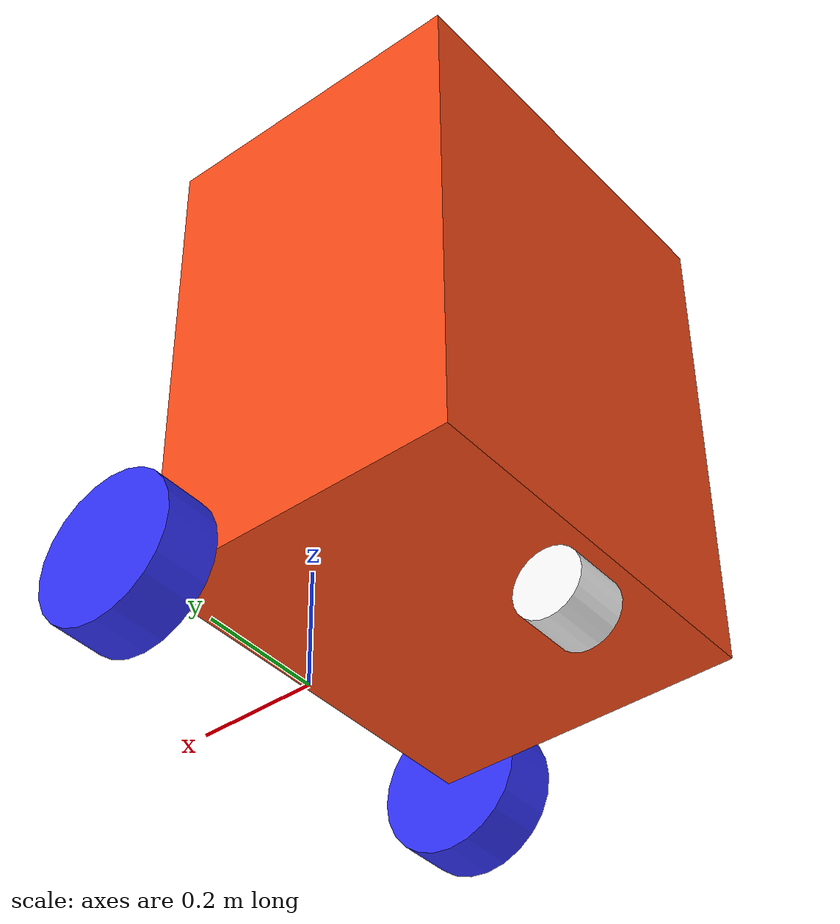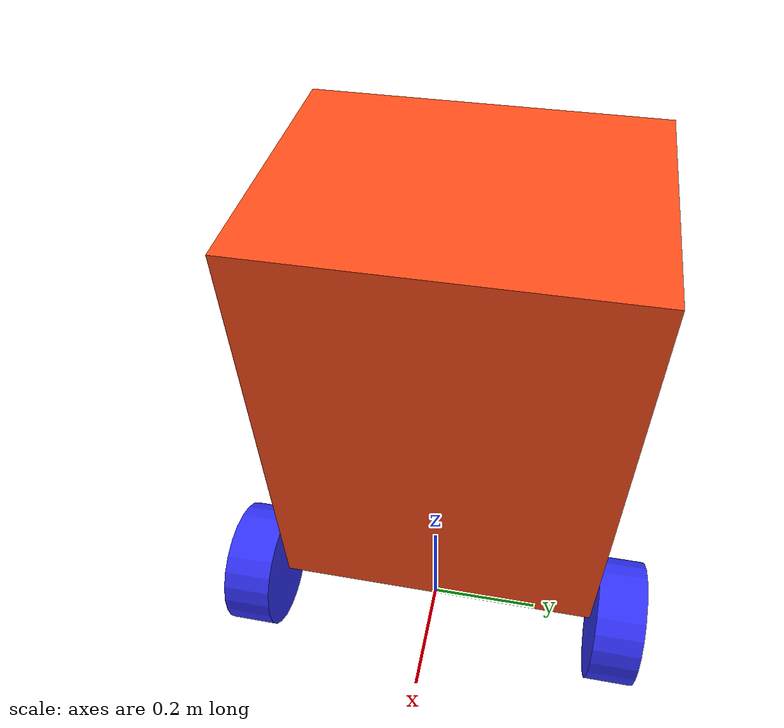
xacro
<?xml version="1.0"?>
<!--
  This file defines the core structure of the robot, including the chassis, wheels, and sensors.
-->
<robot xmlns:xacro="http://www.ros.org/wiki/xacro" >

    <!-- Included files -->
    <xacro:include filename="inertial_macros.xacro"/>
    <xacro:include filename="common_properties.xacro"/>

    <!-- Material definitions -->
    <material name="white">
        <color rgba="1 1 1 1" />
    </material>

    <material name="orange">
        <color rgba="1 0.3 0.1 1"/>
    </material>

    <material name="blue">
        <color rgba="0.2 0.2 1 1"/>
    </material>

    <material name="black">
        <color rgba="0 0 0 1"/>
    </material>

    <material name="red">
        <color rgba="1 0 0 1"/>
    </material>

    <!-- BASE LINK -->
    <!-- The base_link is the central reference frame for the robot. -->
    <link name="base_link">
    </link>

    <!-- BASE_FOOTPRINT LINK -->
    <!-- The base_footprint is located at the projection of the base_link on the ground. -->
    <link name="base_footprint">
    </link>

    <joint name="base_footprint_joint" type="fixed">
        <parent link="base_link"/>
        <child link="base_footprint"/>
        <origin xyz="0 0 ${-wheel_radius}" rpy="0 0 0"/>
    </joint>

    <!-- CHASSIS LINK -->
    <!-- The chassis is the main body of the robot. -->
    <joint name="chassis_joint" type="fixed">
        <parent link="base_link"/>
        <child link="chassis"/>
        <origin xyz="${-wheel_offset_x} 0 ${-wheel_offset_z}"/>
    </joint>

    <link name="chassis">
        <visual>
            <origin xyz="${chassis_length/2} 0 ${chassis_height/2}"/>
            <geometry>
                <box size="${chassis_length} ${chassis_width} ${chassis_height}"/>
            </geometry>
            <material name="orange"/>
        </visual>
        <collision>
            <origin xyz="${chassis_length/2} 0 ${chassis_height/2}"/>
            <geometry>
                <box size="${chassis_length} ${chassis_width} ${chassis_height}"/>
            </geometry>
        </collision>
        <xacro:inertial_box mass="0.5" x="${chassis_length}" y="${chassis_width}" z="${chassis_height}">
            <origin xyz="${chassis_length/2} 0 ${chassis_height/2}" rpy="0 0 0"/>
        </xacro:inertial_box>
    </link>

    <gazebo reference="chassis">
        <material>Gazebo/Orange</material>
    </gazebo>

    <!-- LEFT WHEEL LINK -->
    <joint name="left_wheel_joint" type="continuous">
        <parent link="base_link"/>
        <child link="left_wheel"/>
        <origin xyz="0 ${wheel_offset_y} 0" rpy="-${pi/2} 0 0" />
        <axis xyz="0 0 1"/>
    </joint>

    <link name="left_wheel">
        <visual>
            <geometry>
                <cylinder radius="${wheel_radius}" length="${wheel_thickness}"/>
            </geometry>
            <material name="blue"/>
        </visual>
        <collision>
            <geometry>
                <cylinder radius="${wheel_radius}" length="${wheel_thickness}"/>
            </geometry>
        </collision>
        <xacro:inertial_cylinder mass="${wheel_mass}" length="${wheel_thickness}" radius="${wheel_radius}">
            <origin xyz="0 0 0" rpy="0 0 0"/>
        </xacro:inertial_cylinder>
    </link>

    <gazebo reference="left_wheel">
        <material>Gazebo/Blue</material>
        <!-- kp and kd for rubber -->
        <kp>1000000.0</kp> <!-- Contact stiffness -->
        <kd>100.0</kd>     <!-- Damping -->
        <mu1>1.0</mu1>     <!-- Friction coefficient -->
        <mu2>1.0</mu2>     <!-- Friction coefficient -->
        <fdir1>1 0 0</fdir1>
        <maxVel>1.0</maxVel>
        <minDepth>0.005</minDepth> <!-- Contacts gripping -->
    </gazebo>

    <!-- RIGHT WHEEL LINK -->
    <joint name="right_wheel_joint" type="continuous">
        <parent link="base_link"/>
        <child link="right_wheel"/>
        <origin xyz="0 ${-wheel_offset_y} 0" rpy="${pi/2} 0 0" />
        <axis xyz="0 0 -1"/>
    </joint>

    <link name="right_wheel">
        <visual>
            <geometry>
                <cylinder radius="${wheel_radius}" length="${wheel_thickness}"/>
            </geometry>
            <material name="blue"/>
        </visual>
        <collision>
            <geometry>
                <cylinder radius="${wheel_radius}" length="${wheel_thickness}"/>
            </geometry>
        </collision>
        <xacro:inertial_cylinder mass="${wheel_mass}" length="${wheel_thickness}" radius="${wheel_radius}">
            <origin xyz="0 0 0" rpy="0 0 0"/>
        </xacro:inertial_cylinder>
    </link>

    <gazebo reference="right_wheel">
        <material>Gazebo/Blue</material>
        <!-- kp and kd for rubber -->
        <kp>1000000.0</kp> <!-- Contact stiffness -->
        <kd>100.0</kd>     <!-- Damping -->
        <mu1>1.0</mu1>     <!-- Friction coefficient -->
        <mu2>1.0</mu2>     <!-- Friction coefficient -->
        <fdir1>1 0 0</fdir1>
        <maxVel>1.0</maxVel>
        <minDepth>0.005</minDepth> <!-- Contacts gripping -->
    </gazebo>

    <!-- CASTER WHEEL LINK -->
    <joint name="caster_wheel_joint" type="continuous">
        <parent link="base_link"/>
        <child link="caster_wheel"/>
        <origin xyz="${-caster_wheel_offset_x} 0 ${-caster_wheel_offset_z}" rpy="${pi/2} 0 0" />
        <axis xyz="0 0 -1"/>
    </joint>

    <link name="caster_wheel">
        <visual>
            <geometry>
                <cylinder radius="${caster_wheel_radius}" length="${wheel_thickness}"/>
            </geometry>
            <material name="white"/>
        </visual>
        <collision>
            <geometry>
                <cylinder radius="${caster_wheel_radius}" length="${wheel_thickness}"/>
            </geometry>
        </collision>
        <xacro:inertial_cylinder mass="${caster_wheel_mass}" length="${wheel_thickness}" radius="${caster_wheel_radius}">
            <origin xyz="0 0 0" rpy="0 0 0"/>
        </xacro:inertial_cylinder>
    </link>

    <!-- Gazebo simulation parameters for the caster wheel -->
    <gazebo reference="caster_wheel">
        <material>Gazebo/White</material>
        <kp>1000000.0</kp>
        <kd>100.0</kd>
        <fdir1>1 0 0</fdir1>
        <maxVel>1.0</maxVel>
        <minDepth>0.0</minDepth>
        <mu1>0.0</mu1> <!-- Zero friction to prevent interference with robot motion -->
        <mu2>0.0</mu2> <!-- Zero friction to prevent interference with robot motion -->
    </gazebo>

</robot>

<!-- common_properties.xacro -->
<robot xmlns:xacro="http://www.ros.org/wiki/xacro" >

    <xacro:property name="chassis_length" value="0.5"/>
    <xacro:property name="chassis_width" value="0.63"/>
    <xacro:property name="chassis_height" value="0.8"/>
    <xacro:property name="chassis_mass" value="5.0"/>
    <xacro:property name="wheel_radius" value="0.12"/>
    <xacro:property name="wheel_thickness" value="0.09"/>
    <xacro:property name="wheel_mass" value="9.0"/>
    <xacro:property name="wheel_offset_x" value="0.5"/>
    <xacro:property name="wheel_offset_y" value="${(chassis_width/2) + (wheel_thickness/2)}"/>
    <xacro:property name="wheel_offset_z" value="0.01"/>
    <xacro:property name="caster_wheel_radius" value="${(wheel_radius - wheel_offset_z)/2}"/>
    <xacro:property name="caster_wheel_mass" value="3.0"/>
    <xacro:property name="caster_wheel_offset_x" value="${wheel_offset_x - caster_wheel_radius}"/>
    <xacro:property name="caster_wheel_offset_z" value="${wheel_radius - caster_wheel_radius}"/>
    <xacro:property name="camera_offset_z" value="${0.75 - wheel_radius}"/>
    <xacro:property name="camera_offset_x" value="0.0"/>
    <xacro:property name="lidar_offset_z" value="${0.295 - wheel_radius}"/>
    <xacro:property name="lidar_offset_x" value="0.12"/>
    <xacro:property name="gps_offset_z" value="${0.92 - wheel_radius}"/>
    <xacro:property name="gps_offset_x" value="-0.1"/>
    <xacro:property name="imu_offset_z" value="${0.92 - wheel_radius}"/>
    <xacro:property name="imu_offset_x" value="-0.2"/>

</robot>
